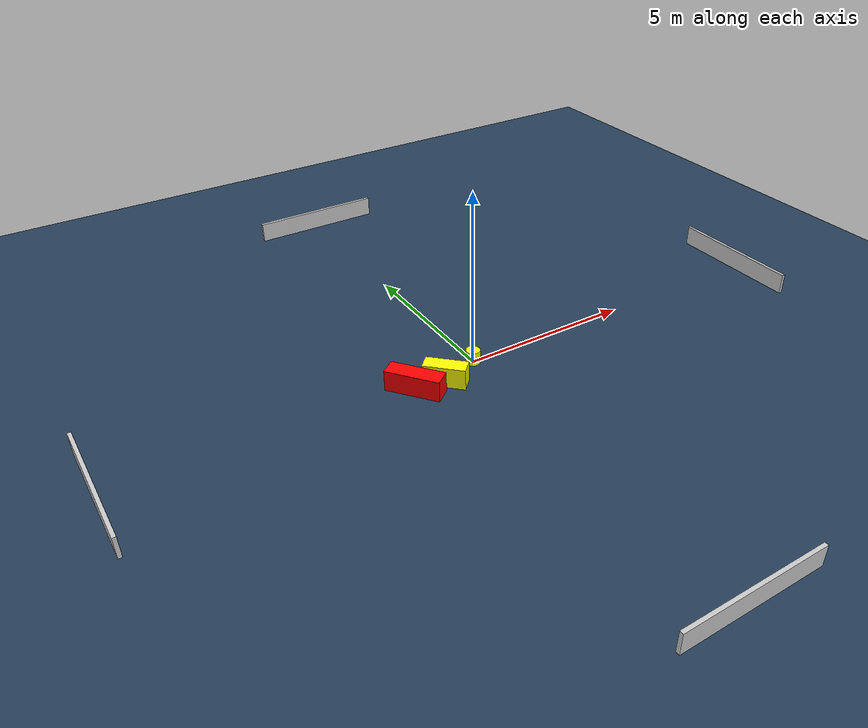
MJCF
<?xml version="1.0" ?>
<mujoco model="generated_environment">
  <option timestep="0.01" integrator="RK4" cone="elliptic"/>
  <default>
    <geom density="1"/>
  </default>
  <asset>
    <texture builtin="gradient" height="3072" name="skybox" rgb1="0.3 0.5 0.7" rgb2="0 0 0" type="skybox" width="512"/>
    <texture builtin="checker" height="300" name="groundplane" rgb1="0.2 0.3 0.4" rgb2="0.1 0.2 0.3" type="2d" width="300"/>
    <material name="groundplane" reflectance="0.2" texrepeat="5 5" texture="groundplane"/>
  </asset>
  <worldbody>
    <light dir="0 0 -1" directional="true" pos="0 0 1.5"/>
    <geom condim="3" friction="0.5 0.005 0.001" material="groundplane" name="floor" pos="0 0 0" size="0 0 0.05" type="plane"/>
    <body name="walls">
      <geom name="wall_1" condim="4" pos="-10.0 0.0 0.3" rgba="0.800000011920929 0.800000011920929 0.800000011920929 1.0" size="0.05 2.0 0.3" type="box"/>
      <geom name="wall_2" condim="4" pos="10.0 0.0 0.3" rgba="0.800000011920929 0.800000011920929 0.800000011920929 1.0" size="0.05 2.0 0.3" type="box"/>
      <geom name="wall_3" condim="4" pos="0.0 -10.0 0.3" rgba="0.800000011920929 0.800000011920929 0.800000011920929 1.0" size="2.0 0.05 0.3" type="box"/>
      <geom name="wall_4" condim="4" pos="0.0 10.0 0.3" rgba="0.800000011920929 0.800000011920929 0.800000011920929 1.0" size="2.0 0.05 0.3" type="box"/>
    </body>
    <body name="robot">
      <joint name="joint_x" type="slide" pos="0 0 0" axis="1 0 0"/>
      <joint name="joint_y" type="slide" pos="0 0 0" axis="0 1 0"/>
      <geom name="robot" type="cylinder" pos="0.0 0.0 0.2" size="0.2 0.2 0.0" mass="5.0" friction="1.0 0.005 0.0001" condim="4" rgba="1.0 1.0 0.0 1.0"/>
    </body>
    <body name="obstacle_1_movable">
      <geom name="obstacle_1_movable" condim="4" pos="-1.1198138475856945 -0.3990644544820829 0.3" euler="0 0 135.14743035852862" friction="0.0 0.005 0.001" rgba="1.0 1.0 0.0 1.0" size="0.5873431726080319 0.22378761691621668 0.3" type="box" mass="0.1"/>
      <joint type="free"/>
    </body>
    <body name="obstacle_2_static">
      <geom name="obstacle_2_static" condim="4" pos="-1.9737971413137576 -0.2870754073883305 0.3" euler="0 0 127.5004898658173" friction="0.0 0.005 0.001" rgba="1.0 0.0 0.0 1.0" size="0.7708904711539484 0.24600260417652858 0.3" type="box"/>
    </body>
  </worldbody>
  <actuator>
    <motor name="actuator_x" joint="joint_x" gear="1" ctrlrange="-1 1"/>
    <motor name="actuator_y" joint="joint_y" gear="1" ctrlrange="-1 1"/>
  </actuator>
</mujoco>
